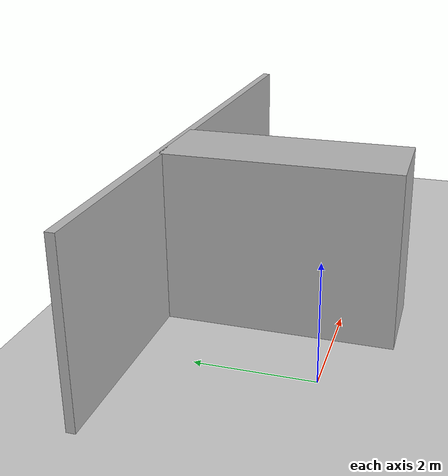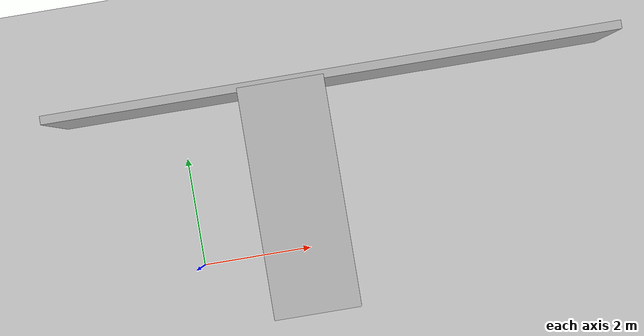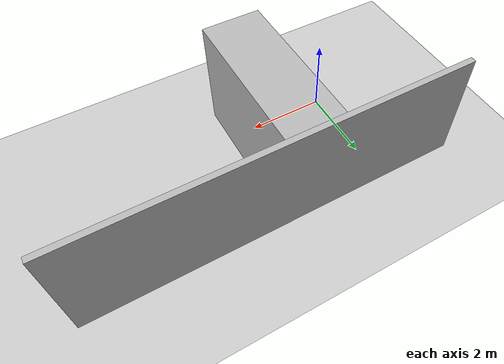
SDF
<?xml version="1.0" ?>
<sdf version="1.6">
  <world name="external_corner_stub">

    <include>
      <uri>model://ground_plane</uri>
    </include>
    <include>
      <uri>model://sun</uri>
    </include>

    <model name="external_corner_test_wall">
      <static>true</static>
      <pose>0 0 0 0 0 0</pose>
      <link name="link">

        <!-- Long wall section before the external corner: widened/lengthened -->
        <visual name="v_long_approach_wall">
          <pose>2.0 1.0 1.5 0 0 0</pose>
          <geometry>
            <box>
              <size>1.5 4.0 3.0</size>
            </box>
          </geometry>
        </visual>
        <collision name="c_long_approach_wall">
          <pose>2.0 1.0 1.5 0 0 0</pose>
          <geometry>
            <box>
              <size>1.5 4.0 3.0</size>
            </box>
          </geometry>
        </collision>

        <!-- Perpendicular return wall at the end, creating the external corner -->
        <visual name="v_corner_return_wall">
          <pose>2.875 3 1.5 0 0 0</pose>
          <geometry>
            <box>
              <size>10 0.15 3.0</size>
            </box>
          </geometry>
        </visual>
        <collision name="c_corner_return_wall">
          <pose>2.875 3 1.5 0 0 0</pose>
          <geometry>
            <box>
              <size>10 0.15 3.0</size>
            </box>
          </geometry>
        </collision>

      </link>
    </model>

  </world>
</sdf>
